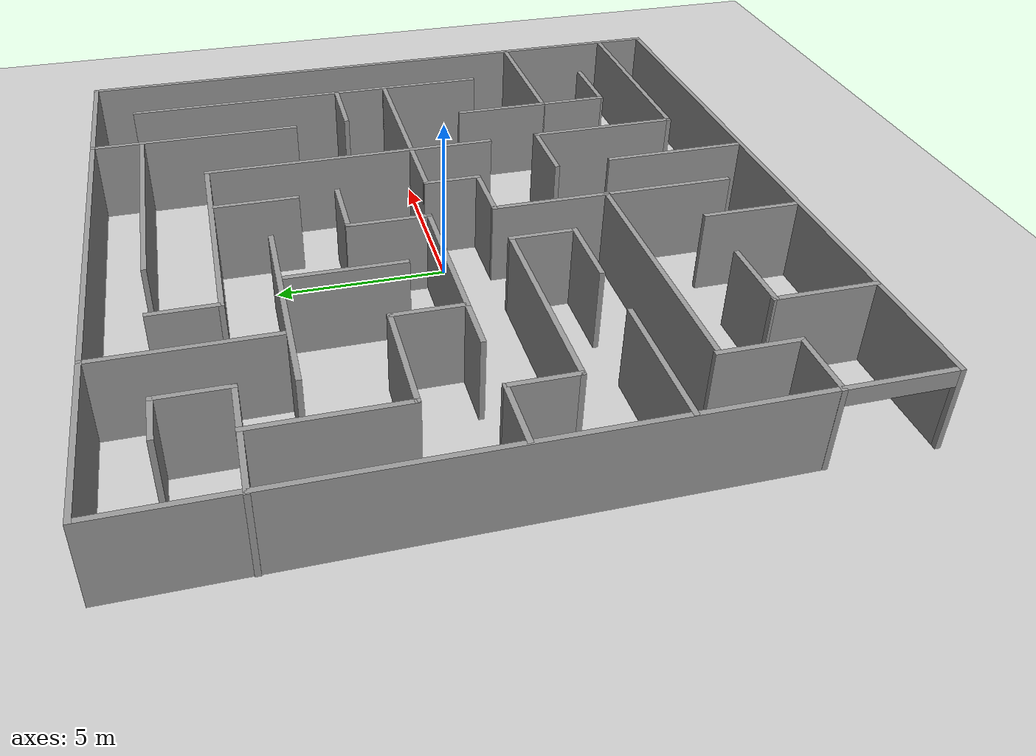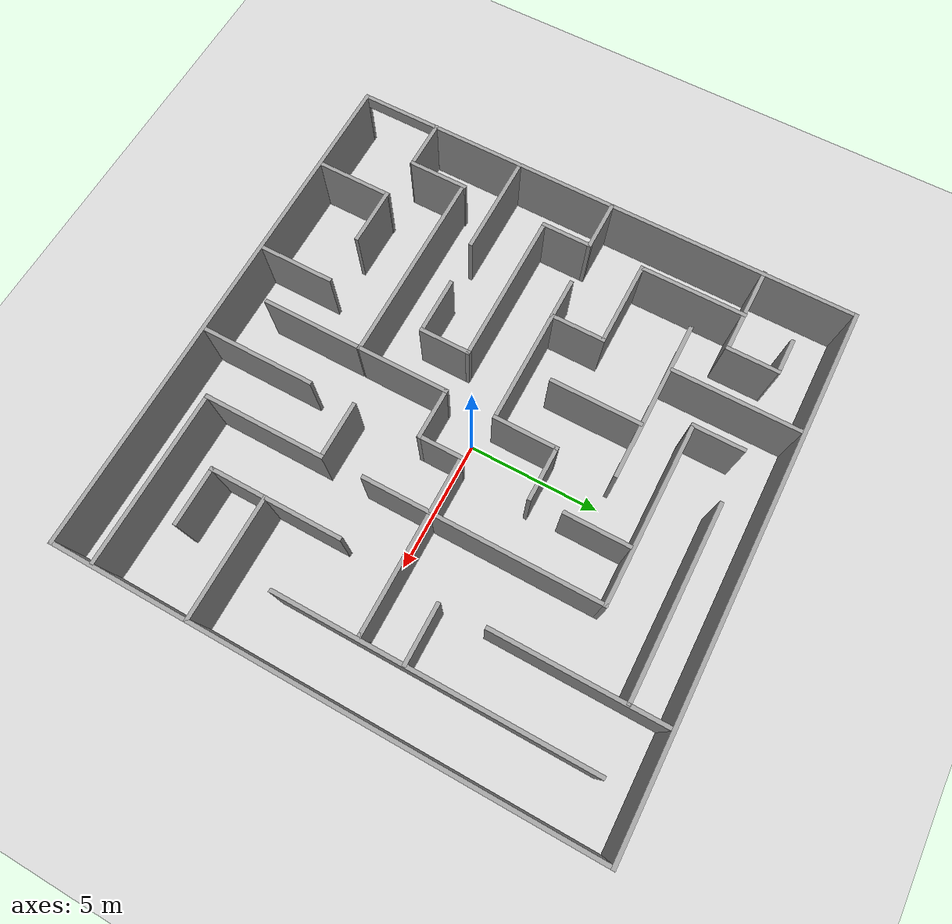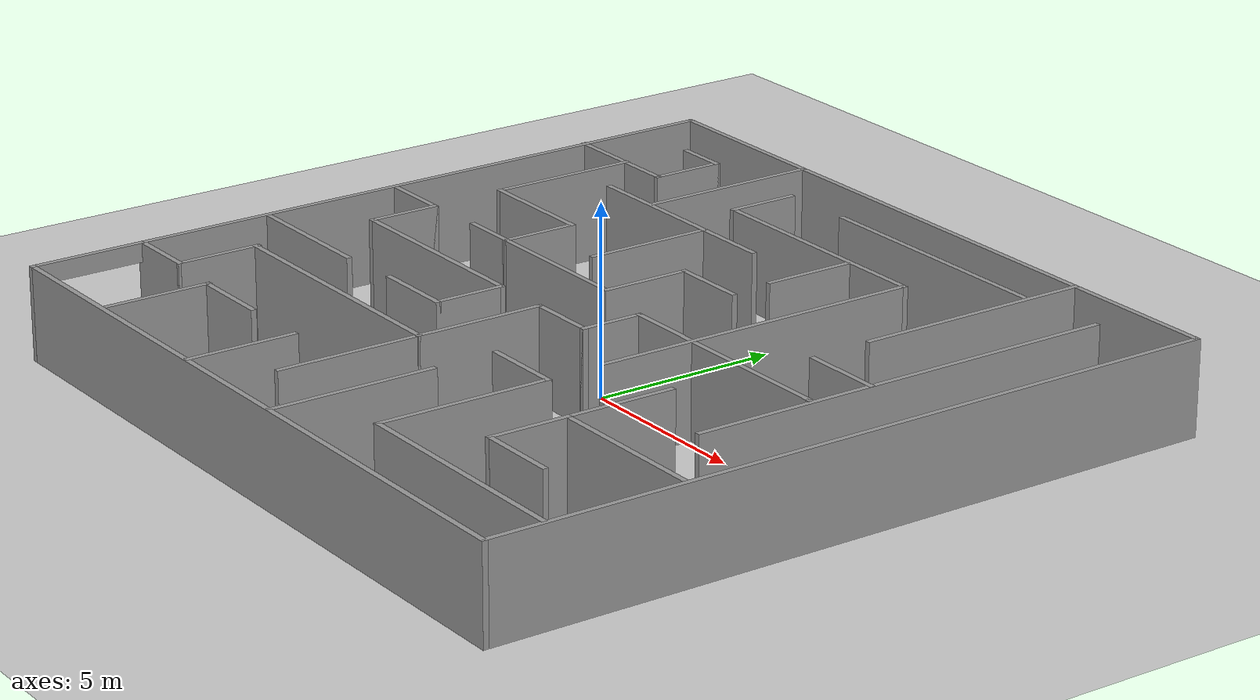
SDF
<sdf version="1.7">
 <world name="default">
  <light name="sun" type="directional">
   <pose>0 0 10 0 -0 0</pose>
   <diffuse>0.8 0.8 0.8 1</diffuse>
   <specular>0.2 0.2 0.2 1</specular>
   <attenuation>
    <range>1000</range>
    <constant>0.9</constant>
    <linear>0.01</linear>
    <quadratic>0.001</quadratic>
   </attenuation>
   <direction>-0.5 0.1 -0.9</direction>
   <spot><inner_angle>0</inner_angle><outer_angle>0</outer_angle><falloff>0</falloff></spot>
  </light>
  <model name="ground_plane">
   <static>1</static>
   <link name="link">
    <collision name="collision">
     <geometry><plane><normal>0 0 1</normal><size>100 100</size></plane></geometry>
     <surface>
      <contact><collide_bitmask>65535</collide_bitmask></contact>
      <friction><ode><mu>100</mu><mu2>50</mu2></ode></friction>
     </surface>
    </collision>
    <visual name="visual">
     <cast_shadows>0</cast_shadows>
     <geometry><plane><normal>0 0 1</normal><size>100 100</size></plane></geometry>
     <material>
      <script><uri>file://media/materials/scripts/gazebo.material</uri><name>Gazebo/Grey</name></script>
     </material>
    </visual>
   </link>
  </model>
  <gravity>0 0 -9.8</gravity>
  <magnetic_field>6e-06 2.3e-05 -4.2e-05</magnetic_field>
  <atmosphere type="adiabatic"/>
  <physics type="ode">
   <max_step_size>0.001</max_step_size>
   <real_time_factor>1</real_time_factor>
   <real_time_update_rate>1000</real_time_update_rate>
  </physics>
  <scene><ambient>0.4 0.4 0.4 1</ambient><background>0.7 0.7 0.7 1</background><shadows>1</shadows></scene>
  <spherical_coordinates>
   <surface_model>EARTH_WGS84</surface_model>
   <latitude_deg>0</latitude_deg>
   <longitude_deg>0</longitude_deg>
   <elevation>0</elevation>
   <heading_deg>0</heading_deg>
  </spherical_coordinates>
  <model name="custom_maze">
   <pose>-0.01457 0 0 0 -0 0</pose>
   <link name="Wall_0">
    <collision name="Wall_0_Collision">
     <geometry><box><size>20.15 0.15 2.5</size></box></geometry>
     <pose>0 0 1.25 0 -0 0</pose>
    </collision>
    <visual name="Wall_0_Visual">
     <pose>0 0 1.25 0 -0 0</pose>
     <geometry><box><size>20.15 0.15 2.5</size></box></geometry>
     <material>
      <script><uri>file://media/materials/scripts/gazebo.material</uri><name>Gazebo/Grey</name></script>
      <ambient>1 1 1 1</ambient>
     </material>
     <meta><layer>0</layer></meta>
    </visual>
    <pose>0.01457 10 0 0 -0 0</pose>
   </link>
   <link name="Wall_10">
    <collision name="Wall_10_Collision">
     <geometry><box><size>3 0.15 2.5</size></box></geometry>
     <pose>0 0 1.25 0 -0 0</pose>
    </collision>
    <visual name="Wall_10_Visual">
     <pose>0 0 1.25 0 -0 0</pose>
     <geometry><box><size>3 0.15 2.5</size></box></geometry>
     <material>
      <script><uri>file://media/materials/scripts/gazebo.material</uri><name>Gazebo/Grey</name></script>
      <ambient>1 1 1 1</ambient>
     </material>
     <meta><layer>0</layer></meta>
    </visual>
    <pose>-2.40022 -8.53063 0 0 -0 1.5708</pose>
   </link>
   <link name="Wall_12">
    <collision name="Wall_12_Collision">
     <geometry><box><size>2.28767 0.15 2.5</size></box></geometry>
     <pose>0 0 1.25 0 -0 0</pose>
    </collision>
    <visual name="Wall_12_Visual">
     <pose>0 0 1.25 0 -0 0</pose>
     <geometry><box><size>2.28767 0.15 2.5</size></box></geometry>
     <material>
      <script><uri>file://media/materials/scripts/gazebo.material</uri><name>Gazebo/Grey</name></script>
      <ambient>1 1 1 1</ambient>
     </material>
     <meta><layer>0</layer></meta>
    </visual>
    <pose>-5.4196 -7.09916 0 0 -0 0.000154</pose>
   </link>
   <link name="Wall_14">
    <collision name="Wall_14_Collision">
     <geometry><box><size>4.5 0.15 2.5</size></box></geometry>
     <pose>0 0 1.25 0 -0 0</pose>
    </collision>
    <visual name="Wall_14_Visual">
     <pose>0 0 1.25 0 -0 0</pose>
     <geometry><box><size>4.5 0.15 2.5</size></box></geometry>
     <material>
      <script><uri>file://media/materials/scripts/gazebo.material</uri><name>Gazebo/Grey</name></script>
      <ambient>1 1 1 1</ambient>
     </material>
     <meta><layer>0</layer></meta>
    </visual>
    <pose>1.32288 -7.80496 0 0 -0 1.5708</pose>
   </link>
   <link name="Wall_16">
    <collision name="Wall_16_Collision">
     <geometry><box><size>2.25 0.15 2.5</size></box></geometry>
     <pose>0 0 1.25 0 -0 0</pose>
    </collision>
    <visual name="Wall_16_Visual">
     <pose>0 0 1.25 0 -0 0</pose>
     <geometry><box><size>2.25 0.15 2.5</size></box></geometry>
     <material>
      <script><uri>file://media/materials/scripts/gazebo.material</uri><name>Gazebo/Grey</name></script>
      <ambient>1 1 1 1</ambient>
     </material>
     <meta><layer>0</layer></meta>
    </visual>
    <pose>2.36657 -3.872 0 0 -0 0</pose>
   </link>
   <link name="Wall_18">
    <collision name="Wall_18_Collision">
     <geometry><box><size>4.70575 0.15 2.5</size></box></geometry>
     <pose>0 0 1.25 0 -0 0</pose>
    </collision>
    <visual name="Wall_18_Visual">
     <pose>0 0 1.25 0 -0 0</pose>
     <geometry><box><size>4.70575 0.15 2.5</size></box></geometry>
     <material>
      <script><uri>file://media/materials/scripts/gazebo.material</uri><name>Gazebo/Grey</name></script>
      <ambient>1 1 1 1</ambient>
     </material>
     <meta><layer>0</layer></meta>
    </visual>
    <pose>3.41657 -6.15 0 0 -0 -1.5708</pose>
   </link>
   <link name="Wall_19">
    <collision name="Wall_19_Collision">
     <geometry><box><size>6.64165 0.15 2.5</size></box></geometry>
     <pose>0 0 1.25 0 -0 0</pose>
    </collision>
    <visual name="Wall_19_Visual">
     <pose>0 0 1.25 0 -0 0</pose>
     <geometry><box><size>6.64165 0.15 2.5</size></box></geometry>
     <material>
      <script><uri>file://media/materials/scripts/gazebo.material</uri><name>Gazebo/Grey</name></script>
      <ambient>1 1 1 1</ambient>
     </material>
     <meta><layer>0</layer></meta>
    </visual>
    <pose>6.66207 -8.428 0 0 -0 0</pose>
   </link>
   <link name="Wall_2">
    <collision name="Wall_2_Collision">
     <geometry><box><size>20.15 0.15 2.5</size></box></geometry>
     <pose>0 0 1.25 0 -0 0</pose>
    </collision>
    <visual name="Wall_2_Visual">
     <pose>0 0 1.25 0 -0 0</pose>
     <geometry><box><size>20.15 0.15 2.5</size></box></geometry>
     <material>
      <script><uri>file://media/materials/scripts/gazebo.material</uri><name>Gazebo/Grey</name></script>
      <ambient>1 1 1 1</ambient>
     </material>
     <meta><layer>0</layer></meta>
    </visual>
    <pose>10.0146 0 0 0 -0 -1.5708</pose>
   </link>
   <link name="Wall_21">
    <collision name="Wall_21_Collision">
     <geometry><box><size>11.75 0.15 2.5</size></box></geometry>
     <pose>0 0 1.25 0 -0 0</pose>
    </collision>
    <visual name="Wall_21_Visual">
     <pose>0 0 1.25 0 -0 0</pose>
     <geometry><box><size>11.75 0.15 2.5</size></box></geometry>
     <material>
      <script><uri>file://media/materials/scripts/gazebo.material</uri><name>Gazebo/Grey</name></script>
      <ambient>1 1 1 1</ambient>
     </material>
     <meta><layer>0</layer></meta>
    </visual>
    <pose>7.96606 2.88422 0 0 -0 -1.5708</pose>
   </link>
   <link name="Wall_23">
    <collision name="Wall_23_Collision">
     <geometry><box><size>4.63921 0.15 2.5</size></box></geometry>
     <pose>0 0 1.25 0 -0 0</pose>
    </collision>
    <visual name="Wall_23_Visual">
     <pose>0 0 1.25 0 -0 0</pose>
     <geometry><box><size>4.63921 0.15 2.5</size></box></geometry>
     <material>
      <script><uri>file://media/materials/scripts/gazebo.material</uri><name>Gazebo/Grey</name></script>
      <ambient>1 1 1 1</ambient>
     </material>
     <meta><layer>0</layer></meta>
    </visual>
    <pose>7.74118 -4.74808 0 0 -0 3.14156</pose>
   </link>
   <link name="Wall_24">
    <collision name="Wall_24_Collision">
     <geometry><box><size>3 0.15 2.5</size></box></geometry>
     <pose>0 0 1.25 0 -0 0</pose>
    </collision>
    <visual name="Wall_24_Visual">
     <pose>0 0 1.25 0 -0 0</pose>
     <geometry><box><size>3 0.15 2.5</size></box></geometry>
     <material>
      <script><uri>file://media/materials/scripts/gazebo.material</uri><name>Gazebo/Grey</name></script>
      <ambient>1 1 1 1</ambient>
     </material>
     <meta><layer>0</layer></meta>
    </visual>
    <pose>5.49657 -3.323 0 0 -0 1.5708</pose>
   </link>
   <link name="Wall_26">
    <collision name="Wall_26_Collision">
     <geometry><box><size>2.23233 0.15 2.5</size></box></geometry>
     <pose>0 0 1.25 0 -0 0</pose>
    </collision>
    <visual name="Wall_26_Visual">
     <pose>0 0 1.25 0 -0 0</pose>
     <geometry><box><size>2.23233 0.15 2.5</size></box></geometry>
     <material>
      <script><uri>file://media/materials/scripts/gazebo.material</uri><name>Gazebo/Grey</name></script>
      <ambient>1 1 1 1</ambient>
     </material>
     <meta><layer>0</layer></meta>
    </visual>
    <pose>5.49657 -5.789 0 0 -0 -1.5708</pose>
   </link>
   <link name="Wall_27">
    <collision name="Wall_27_Collision">
     <geometry><box><size>2.24987 0.15 2.5</size></box></geometry>
     <pose>0 0 1.25 0 -0 0</pose>
    </collision>
    <visual name="Wall_27_Visual">
     <pose>0 0 1.25 0 -0 0</pose>
     <geometry><box><size>2.24987 0.15 2.5</size></box></geometry>
     <material>
      <script><uri>file://media/materials/scripts/gazebo.material</uri><name>Gazebo/Grey</name></script>
      <ambient>1 1 1 1</ambient>
     </material>
     <meta><layer>0</layer></meta>
    </visual>
    <pose>6.5465 -6.83024 0 0 -0 -0.000228</pose>
   </link>
   <link name="Wall_29">
    <collision name="Wall_29_Collision">
     <geometry><box><size>6.5 0.15 2.5</size></box></geometry>
     <pose>0 0 1.25 0 -0 0</pose>
    </collision>
    <visual name="Wall_29_Visual">
     <pose>0 0 1.25 0 -0 0</pose>
     <geometry><box><size>6.5 0.15 2.5</size></box></geometry>
     <material>
      <script><uri>file://media/materials/scripts/gazebo.material</uri><name>Gazebo/Grey</name></script>
      <ambient>1 1 1 1</ambient>
     </material>
     <meta><layer>0</layer></meta>
    </visual>
    <pose>5.75167 6.82325 0 0 -0 -1.5708</pose>
   </link>
   <link name="Wall_3">
    <collision name="Wall_3_Collision">
     <geometry><box><size>20.15 0.15 2.5</size></box></geometry>
     <pose>0 0 1.25 0 -0 0</pose>
    </collision>
    <visual name="Wall_3_Visual">
     <pose>0 0 1.25 0 -0 0</pose>
     <geometry><box><size>20.15 0.15 2.5</size></box></geometry>
     <material>
      <script><uri>file://media/materials/scripts/gazebo.material</uri><name>Gazebo/Grey</name></script>
      <ambient>1 1 1 1</ambient>
     </material>
     <meta><layer>0</layer></meta>
    </visual>
    <pose>0.01457 -10 0 0 -0 3.14159</pose>
   </link>
   <link name="Wall_31">
    <collision name="Wall_31_Collision">
     <geometry><box><size>2.25 0.15 2.5</size></box></geometry>
     <pose>0 0 1.25 0 -0 0</pose>
    </collision>
    <visual name="Wall_31_Visual">
     <pose>0 0 1.25 0 -0 0</pose>
     <geometry><box><size>2.25 0.15 2.5</size></box></geometry>
     <material>
      <script><uri>file://media/materials/scripts/gazebo.material</uri><name>Gazebo/Grey</name></script>
      <ambient>1 1 1 1</ambient>
     </material>
     <meta><layer>0</layer></meta>
    </visual>
    <pose>6.89173 1.91936 0 0 -0 3.14159</pose>
   </link>
   <link name="Wall_33">
    <collision name="Wall_33_Collision">
     <geometry><box><size>7.25 0.15 2.5</size></box></geometry>
     <pose>0 0 1.25 0 -0 0</pose>
    </collision>
    <visual name="Wall_33_Visual">
     <pose>0 0 1.25 0 -0 0</pose>
     <geometry><box><size>7.25 0.15 2.5</size></box></geometry>
     <material>
      <script><uri>file://media/materials/scripts/gazebo.material</uri><name>Gazebo/Grey</name></script>
      <ambient>1 1 1 1</ambient>
     </material>
     <meta><layer>0</layer></meta>
    </visual>
    <pose>2.153 8.48954 0 0 -0 3.14159</pose>
   </link>
   <link name="Wall_35">
    <collision name="Wall_35_Collision">
     <geometry><box><size>2 0.15 2.5</size></box></geometry>
     <pose>0 0 1.25 0 -0 0</pose>
    </collision>
    <visual name="Wall_35_Visual">
     <pose>0 0 1.25 0 -0 0</pose>
     <geometry><box><size>2 0.15 2.5</size></box></geometry>
     <material>
      <script><uri>file://media/materials/scripts/gazebo.material</uri><name>Gazebo/Grey</name></script>
      <ambient>1 1 1 1</ambient>
     </material>
     <meta><layer>0</layer></meta>
    </visual>
    <pose>-9.06743 -6.93811 0 0 -0 0.000115</pose>
   </link>
   <link name="Wall_36">
    <collision name="Wall_36_Collision">
     <geometry><box><size>2.36935 0.15 2.5</size></box></geometry>
     <pose>0 0 1.25 0 -0 0</pose>
    </collision>
    <visual name="Wall_36_Visual">
     <pose>0 0 1.25 0 -0 0</pose>
     <geometry><box><size>2.36935 0.15 2.5</size></box></geometry>
     <material>
      <script><uri>file://media/materials/scripts/gazebo.material</uri><name>Gazebo/Grey</name></script>
      <ambient>1 1 1 1</ambient>
     </material>
     <meta><layer>0</layer></meta>
    </visual>
    <pose>-8.14243 -5.82833 0 0 -0 1.5708</pose>
   </link>
   <link name="Wall_37">
    <collision name="Wall_37_Collision">
     <geometry><box><size>7.677 0.15 2.5</size></box></geometry>
     <pose>0 0 1.25 0 -0 0</pose>
    </collision>
    <visual name="Wall_37_Visual">
     <pose>0 0 1.25 0 -0 0</pose>
     <geometry><box><size>7.677 0.15 2.5</size></box></geometry>
     <material>
      <script><uri>file://media/materials/scripts/gazebo.material</uri><name>Gazebo/Grey</name></script>
      <ambient>1 1 1 1</ambient>
     </material>
     <meta><layer>0</layer></meta>
    </visual>
    <pose>-4.37893 -4.76732 0 0 -0 0</pose>
   </link>
   <link name="Wall_38">
    <collision name="Wall_38_Collision">
     <geometry><box><size>3.8 0.15 2.5</size></box></geometry>
     <pose>0 0 1.25 0 -0 0</pose>
    </collision>
    <visual name="Wall_38_Visual">
     <pose>0 0 1.25 0 -0 0</pose>
     <geometry><box><size>3.8 0.15 2.5</size></box></geometry>
     <material>
      <script><uri>file://media/materials/scripts/gazebo.material</uri><name>Gazebo/Grey</name></script>
      <ambient>1 1 1 1</ambient>
     </material>
     <meta><layer>0</layer></meta>
    </visual>
    <pose>-0.61543 -6.75883 0 0 -0 -1.5708</pose>
   </link>
   <link name="Wall_4">
    <pose>-9.98543 0 0 0 -0 1.5708</pose>
    <visual name="Wall_4_Visual_0">
     <pose>-9.99893 0 1.25 0 -0 0</pose>
     <geometry><box><size>0.152694 0.15 2.5</size></box></geometry>
     <material>
      <script><uri>file://media/materials/scripts/gazebo.material</uri><name>Gazebo/Grey</name></script>
      <ambient>1 1 1 1</ambient>
     </material>
     <meta><layer>0</layer></meta>
    </visual>
    <collision name="Wall_4_Collision_0">
     <geometry><box><size>0.152694 0.15 2.5</size></box></geometry>
     <pose>-9.99893 0 1.25 0 -0 0</pose>
    </collision>
    <visual name="Wall_4_Visual_1">
     <pose>1.57635 0 1.25 0 -0 0</pose>
     <geometry><box><size>16.9979 0.15 2.5</size></box></geometry>
     <material>
      <script><uri>file://media/materials/scripts/gazebo.material</uri><name>Gazebo/Grey</name></script>
      <ambient>1 1 1 1</ambient>
     </material>
     <meta><layer>0</layer></meta>
    </visual>
    <collision name="Wall_4_Collision_1">
     <geometry><box><size>16.9979 0.15 2.5</size></box></geometry>
     <pose>1.57635 0 1.25 0 -0 0</pose>
    </collision>
    <visual name="Wall_4_Visual_2">
     <pose>-8.42259 0 2.25 0 -0 0</pose>
     <geometry><box><size>3 0.15 0.5</size></box></geometry>
     <material>
      <script><uri>file://media/materials/scripts/gazebo.material</uri><name>Gazebo/Grey</name></script>
      <ambient>1 1 1 1</ambient>
     </material>
     <meta><layer>0</layer></meta>
    </visual>
    <collision name="Wall_4_Collision_2">
     <geometry><box><size>3 0.15 0.5</size></box></geometry>
     <pose>-8.42259 0 2.25 0 -0 0</pose>
    </collision>
   </link>
   <link name="Wall_40">
    <collision name="Wall_40_Collision">
     <geometry><box><size>1.44062 0.15 2.5</size></box></geometry>
     <pose>0 0 1.25 0 -0 0</pose>
    </collision>
    <visual name="Wall_40_Visual">
     <pose>0 0 1.25 0 -0 0</pose>
     <geometry><box><size>1.44062 0.15 2.5</size></box></geometry>
     <material>
      <script><uri>file://media/materials/scripts/gazebo.material</uri><name>Gazebo/Grey</name></script>
      <ambient>1 1 1 1</ambient>
     </material>
     <meta><layer>0</layer></meta>
    </visual>
    <pose>-7.32074 8.3921 0 0 -0 -0.00016</pose>
   </link>
   <link name="Wall_41">
    <collision name="Wall_41_Collision">
     <geometry><box><size>2.03551 0.15 2.5</size></box></geometry>
     <pose>0 0 1.25 0 -0 0</pose>
    </collision>
    <visual name="Wall_41_Visual">
     <pose>0 0 1.25 0 -0 0</pose>
     <geometry><box><size>2.03551 0.15 2.5</size></box></geometry>
     <material>
      <script><uri>file://media/materials/scripts/gazebo.material</uri><name>Gazebo/Grey</name></script>
      <ambient>1 1 1 1</ambient>
     </material>
     <meta><layer>0</layer></meta>
    </visual>
    <pose>-6.67543 7.4495 0 0 -0 -1.5708</pose>
   </link>
   <link name="Wall_42">
    <collision name="Wall_42_Collision">
     <geometry><box><size>3.48899 0.15 2.5</size></box></geometry>
     <pose>0 0 1.25 0 -0 0</pose>
    </collision>
    <visual name="Wall_42_Visual">
     <pose>0 0 1.25 0 -0 0</pose>
     <geometry><box><size>3.48899 0.15 2.5</size></box></geometry>
     <material>
      <script><uri>file://media/materials/scripts/gazebo.material</uri><name>Gazebo/Grey</name></script>
      <ambient>1 1 1 1</ambient>
     </material>
     <meta><layer>0</layer></meta>
    </visual>
    <pose>-8.34507 6.50693 0 0 -0 -3.14155</pose>
   </link>
   <link name="Wall_44">
    <collision name="Wall_44_Collision">
     <geometry><box><size>3.51979 0.15 2.5</size></box></geometry>
     <pose>0 0 1.25 0 -0 0</pose>
    </collision>
    <visual name="Wall_44_Visual">
     <pose>0 0 1.25 0 -0 0</pose>
     <geometry><box><size>3.51979 0.15 2.5</size></box></geometry>
     <material>
      <script><uri>file://media/materials/scripts/gazebo.material</uri><name>Gazebo/Grey</name></script>
      <ambient>1 1 1 1</ambient>
     </material>
     <meta><layer>0</layer></meta>
    </visual>
    <pose>-0.615433 -3.03376 0 0 -0 1.5708</pose>
   </link>
   <link name="Wall_45">
    <collision name="Wall_45_Collision">
     <geometry><box><size>2 0.15 2.5</size></box></geometry>
     <pose>0 0 1.25 0 -0 0</pose>
    </collision>
    <visual name="Wall_45_Visual">
     <pose>0 0 1.25 0 -0 0</pose>
     <geometry><box><size>2 0.15 2.5</size></box></geometry>
     <material>
      <script><uri>file://media/materials/scripts/gazebo.material</uri><name>Gazebo/Grey</name></script>
      <ambient>1 1 1 1</ambient>
     </material>
     <meta><layer>0</layer></meta>
    </visual>
    <pose>0.309565 -1.34887 0 0 -0 0</pose>
   </link>
   <link name="Wall_46">
    <collision name="Wall_46_Collision">
     <geometry><box><size>1.75 0.15 2.5</size></box></geometry>
     <pose>0 0 1.25 0 -0 0</pose>
    </collision>
    <visual name="Wall_46_Visual">
     <pose>0 0 1.25 0 -0 0</pose>
     <geometry><box><size>1.75 0.15 2.5</size></box></geometry>
     <material>
      <script><uri>file://media/materials/scripts/gazebo.material</uri><name>Gazebo/Grey</name></script>
      <ambient>1 1 1 1</ambient>
     </material>
     <meta><layer>0</layer></meta>
    </visual>
    <pose>1.23456 -0.548869 0 0 -0 1.5708</pose>
   </link>
   <link name="Wall_47">
    <collision name="Wall_47_Collision">
     <geometry><box><size>6.75 0.15 2.5</size></box></geometry>
     <pose>0 0 1.25 0 -0 0</pose>
    </collision>
    <visual name="Wall_47_Visual">
     <pose>0 0 1.25 0 -0 0</pose>
     <geometry><box><size>6.75 0.15 2.5</size></box></geometry>
     <material>
      <script><uri>file://media/materials/scripts/gazebo.material</uri><name>Gazebo/Grey</name></script>
      <ambient>1 1 1 1</ambient>
     </material>
     <meta><layer>0</layer></meta>
    </visual>
    <pose>4.53456 0.251131 0 0 -0 0</pose>
   </link>
   <link name="Wall_48">
    <collision name="Wall_48_Collision">
     <geometry><box><size>0.15 0.15 2.5</size></box></geometry>
     <pose>0 0 1.25 0 -0 0</pose>
    </collision>
    <visual name="Wall_48_Visual">
     <pose>0 0 1.25 0 -0 0</pose>
     <geometry><box><size>0.15 0.15 2.5</size></box></geometry>
     <material>
      <script><uri>file://media/materials/scripts/gazebo.material</uri><name>Gazebo/Grey</name></script>
      <ambient>1 1 1 1</ambient>
     </material>
     <meta><layer>0</layer></meta>
    </visual>
    <pose>7.83456 0.251131 0 0 -0 0</pose>
   </link>
   <link name="Wall_50">
    <collision name="Wall_50_Collision">
     <geometry><box><size>9.00669 0.15 2.5</size></box></geometry>
     <pose>0 0 1.25 0 -0 0</pose>
    </collision>
    <visual name="Wall_50_Visual">
     <pose>0 0 1.25 0 -0 0</pose>
     <geometry><box><size>9.00669 0.15 2.5</size></box></geometry>
     <material>
      <script><uri>file://media/materials/scripts/gazebo.material</uri><name>Gazebo/Grey</name></script>
      <ambient>1 1 1 1</ambient>
     </material>
     <meta><layer>0</layer></meta>
    </visual>
    <pose>3.36657 2.1625 0 0 -0 1.5708</pose>
   </link>
   <link name="Wall_51">
    <collision name="Wall_51_Collision">
     <geometry><box><size>6.99336 0.15 2.5</size></box></geometry>
     <pose>0 0 1.25 0 -0 0</pose>
    </collision>
    <visual name="Wall_51_Visual">
     <pose>0 0 1.25 0 -0 0</pose>
     <geometry><box><size>6.99336 0.15 2.5</size></box></geometry>
     <material>
      <script><uri>file://media/materials/scripts/gazebo.material</uri><name>Gazebo/Grey</name></script>
      <ambient>1 1 1 1</ambient>
     </material>
     <meta><layer>0</layer></meta>
    </visual>
    <pose>-0.05493 6.591 0 0 -0 3.14159</pose>
   </link>
   <link name="Wall_52">
    <collision name="Wall_52_Collision">
     <geometry><box><size>1.99334 0.15 2.5</size></box></geometry>
     <pose>0 0 1.25 0 -0 0</pose>
    </collision>
    <visual name="Wall_52_Visual">
     <pose>0 0 1.25 0 -0 0</pose>
     <geometry><box><size>1.99334 0.15 2.5</size></box></geometry>
     <material>
      <script><uri>file://media/materials/scripts/gazebo.material</uri><name>Gazebo/Grey</name></script>
      <ambient>1 1 1 1</ambient>
     </material>
     <meta><layer>0</layer></meta>
    </visual>
    <pose>-3.47643 7.5125 0 0 -0 1.5708</pose>
   </link>
   <link name="Wall_55">
    <collision name="Wall_55_Collision">
     <geometry><box><size>2.5 0.15 2.5</size></box></geometry>
     <pose>0 0 1.25 0 -0 0</pose>
    </collision>
    <visual name="Wall_55_Visual">
     <pose>0 0 1.25 0 -0 0</pose>
     <geometry><box><size>2.5 0.15 2.5</size></box></geometry>
     <material>
      <script><uri>file://media/materials/scripts/gazebo.material</uri><name>Gazebo/Grey</name></script>
      <ambient>1 1 1 1</ambient>
     </material>
     <meta><layer>0</layer></meta>
    </visual>
    <pose>1.29854 5.29482 0 0 -0 -1.5708</pose>
   </link>
   <link name="Wall_57">
    <collision name="Wall_57_Collision">
     <geometry><box><size>4 0.15 2.5</size></box></geometry>
     <pose>0 0 1.25 0 -0 0</pose>
    </collision>
    <visual name="Wall_57_Visual">
     <pose>0 0 1.25 0 -0 0</pose>
     <geometry><box><size>4 0.15 2.5</size></box></geometry>
     <material>
      <script><uri>file://media/materials/scripts/gazebo.material</uri><name>Gazebo/Grey</name></script>
      <ambient>1 1 1 1</ambient>
     </material>
     <meta><layer>0</layer></meta>
    </visual>
    <pose>-8.0431 -3.33678 0 0 -0 0</pose>
   </link>
   <link name="Wall_59">
    <collision name="Wall_59_Collision">
     <geometry><box><size>2.25 0.15 2.5</size></box></geometry>
     <pose>0 0 1.25 0 -0 0</pose>
    </collision>
    <visual name="Wall_59_Visual">
     <pose>0 0 1.25 0 -0 0</pose>
     <geometry><box><size>2.25 0.15 2.5</size></box></geometry>
     <material>
      <script><uri>file://media/materials/scripts/gazebo.material</uri><name>Gazebo/Grey</name></script>
      <ambient>1 1 1 1</ambient>
     </material>
     <meta><layer>0</layer></meta>
    </visual>
    <pose>-3.29695 -3.21511 0 0 -0 0</pose>
   </link>
   <link name="Wall_60">
    <collision name="Wall_60_Collision">
     <geometry><box><size>2 0.15 2.5</size></box></geometry>
     <pose>0 0 1.25 0 -0 0</pose>
    </collision>
    <visual name="Wall_60_Visual">
     <pose>0 0 1.25 0 -0 0</pose>
     <geometry><box><size>2 0.15 2.5</size></box></geometry>
     <material>
      <script><uri>file://media/materials/scripts/gazebo.material</uri><name>Gazebo/Grey</name></script>
      <ambient>1 1 1 1</ambient>
     </material>
     <meta><layer>0</layer></meta>
    </visual>
    <pose>-2.24695 -2.29011 0 0 -0 1.5708</pose>
   </link>
   <link name="Wall_61">
    <collision name="Wall_61_Collision">
     <geometry><box><size>6 0.15 2.5</size></box></geometry>
     <pose>0 0 1.25 0 -0 0</pose>
    </collision>
    <visual name="Wall_61_Visual">
     <pose>0 0 1.25 0 -0 0</pose>
     <geometry><box><size>6 0.15 2.5</size></box></geometry>
     <material>
      <script><uri>file://media/materials/scripts/gazebo.material</uri><name>Gazebo/Grey</name></script>
      <ambient>1 1 1 1</ambient>
     </material>
     <meta><layer>0</layer></meta>
    </visual>
    <pose>-5.17195 -1.36511 0 0 -0 3.14159</pose>
   </link>
   <link name="Wall_62">
    <collision name="Wall_62_Collision">
     <geometry><box><size>2 0.15 2.5</size></box></geometry>
     <pose>0 0 1.25 0 -0 0</pose>
    </collision>
    <visual name="Wall_62_Visual">
     <pose>0 0 1.25 0 -0 0</pose>
     <geometry><box><size>2 0.15 2.5</size></box></geometry>
     <material>
      <script><uri>file://media/materials/scripts/gazebo.material</uri><name>Gazebo/Grey</name></script>
      <ambient>1 1 1 1</ambient>
     </material>
     <meta><layer>0</layer></meta>
    </visual>
    <pose>-8.09695 -0.440111 0 0 -0 1.5708</pose>
   </link>
   <link name="Wall_63">
    <collision name="Wall_63_Collision">
     <geometry><box><size>2 0.15 2.5</size></box></geometry>
     <pose>0 0 1.25 0 -0 0</pose>
    </collision>
    <visual name="Wall_63_Visual">
     <pose>0 0 1.25 0 -0 0</pose>
     <geometry><box><size>2 0.15 2.5</size></box></geometry>
     <material>
      <script><uri>file://media/materials/scripts/gazebo.material</uri><name>Gazebo/Grey</name></script>
      <ambient>1 1 1 1</ambient>
     </material>
     <meta><layer>0</layer></meta>
    </visual>
    <pose>-9.02195 0.484889 0 0 -0 3.14159</pose>
   </link>
   <link name="Wall_65">
    <collision name="Wall_65_Collision">
     <geometry><box><size>5 0.15 2.5</size></box></geometry>
     <pose>0 0 1.25 0 -0 0</pose>
    </collision>
    <visual name="Wall_65_Visual">
     <pose>0 0 1.25 0 -0 0</pose>
     <geometry><box><size>5 0.15 2.5</size></box></geometry>
     <material>
      <script><uri>file://media/materials/scripts/gazebo.material</uri><name>Gazebo/Grey</name></script>
      <ambient>1 1 1 1</ambient>
     </material>
     <meta><layer>0</layer></meta>
    </visual>
    <pose>-5.00396 7.57325 0 0 -0 -1.5708</pose>
   </link>
   <link name="Wall_67">
    <collision name="Wall_67_Collision">
     <geometry><box><size>4.11739 0.15 2.5</size></box></geometry>
     <pose>0 0 1.25 0 -0 0</pose>
    </collision>
    <visual name="Wall_67_Visual">
     <pose>0 0 1.25 0 -0 0</pose>
     <geometry><box><size>4.11739 0.15 2.5</size></box></geometry>
     <material>
      <script><uri>file://media/materials/scripts/gazebo.material</uri><name>Gazebo/Grey</name></script>
      <ambient>1 1 1 1</ambient>
     </material>
     <meta><layer>0</layer></meta>
    </visual>
    <pose>-8.14343 4.5345 0 0 -0 -1.5708</pose>
   </link>
   <link name="Wall_68">
    <collision name="Wall_68_Collision">
     <geometry><box><size>3.38934 0.15 2.5</size></box></geometry>
     <pose>0 0 1.25 0 -0 0</pose>
    </collision>
    <visual name="Wall_68_Visual">
     <pose>0 0 1.25 0 -0 0</pose>
     <geometry><box><size>3.38934 0.15 2.5</size></box></geometry>
     <material>
      <script><uri>file://media/materials/scripts/gazebo.material</uri><name>Gazebo/Grey</name></script>
      <ambient>1 1 1 1</ambient>
     </material>
     <meta><layer>0</layer></meta>
    </visual>
    <pose>-6.52343 2.551 0 0 -0 0</pose>
   </link>
   <link name="Wall_69">
    <collision name="Wall_69_Collision">
     <geometry><box><size>2.13268 0.15 2.5</size></box></geometry>
     <pose>0 0 1.25 0 -0 0</pose>
    </collision>
    <visual name="Wall_69_Visual">
     <pose>0 0 1.25 0 -0 0</pose>
     <geometry><box><size>2.13268 0.15 2.5</size></box></geometry>
     <material>
      <script><uri>file://media/materials/scripts/gazebo.material</uri><name>Gazebo/Grey</name></script>
      <ambient>1 1 1 1</ambient>
     </material>
     <meta><layer>0</layer></meta>
    </visual>
    <pose>-4.90343 1.5595 0 0 -0 -1.5708</pose>
   </link>
   <link name="Wall_7">
    <collision name="Wall_7_Collision">
     <geometry><box><size>3.05501 0.15 2.5</size></box></geometry>
     <pose>0 0 1.25 0 -0 0</pose>
    </collision>
    <visual name="Wall_7_Visual">
     <pose>0 0 1.25 0 -0 0</pose>
     <geometry><box><size>3.05501 0.15 2.5</size></box></geometry>
     <material>
      <script><uri>file://media/materials/scripts/gazebo.material</uri><name>Gazebo/Grey</name></script>
      <ambient>1 1 1 1</ambient>
     </material>
     <meta><layer>0</layer></meta>
    </visual>
    <pose>-6.48843 -8.5275 0 0 -0 1.5708</pose>
   </link>
   <link name="Wall_70">
    <collision name="Wall_70_Collision">
     <geometry><box><size>1.63934 0.15 2.5</size></box></geometry>
     <pose>0 0 1.25 0 -0 0</pose>
    </collision>
    <visual name="Wall_70_Visual">
     <pose>0 0 1.25 0 -0 0</pose>
     <geometry><box><size>1.63934 0.15 2.5</size></box></geometry>
     <material>
      <script><uri>file://media/materials/scripts/gazebo.material</uri><name>Gazebo/Grey</name></script>
      <ambient>1 1 1 1</ambient>
     </material>
     <meta><layer>0</layer></meta>
    </visual>
    <pose>-5.64824 0.568244 0 0 -0 3.14126</pose>
   </link>
   <link name="Wall_73">
    <collision name="Wall_73_Collision">
     <geometry><box><size>6.25 0.15 2.5</size></box></geometry>
     <pose>0 0 1.25 0 -0 0</pose>
    </collision>
    <visual name="Wall_73_Visual">
     <pose>0 0 1.25 0 -0 0</pose>
     <geometry><box><size>6.25 0.15 2.5</size></box></geometry>
     <material>
      <script><uri>file://media/materials/scripts/gazebo.material</uri><name>Gazebo/Grey</name></script>
      <ambient>1 1 1 1</ambient>
     </material>
     <meta><layer>0</layer></meta>
    </visual>
    <pose>-3.70601 5.05845 0 0 -0 0</pose>
   </link>
   <link name="Wall_75">
    <collision name="Wall_75_Collision">
     <geometry><box><size>4.488 0.15 2.5</size></box></geometry>
     <pose>0 0 1.25 0 -0 0</pose>
    </collision>
    <visual name="Wall_75_Visual">
     <pose>0 0 1.25 0 -0 0</pose>
     <geometry><box><size>4.488 0.15 2.5</size></box></geometry>
     <material>
      <script><uri>file://media/materials/scripts/gazebo.material</uri><name>Gazebo/Grey</name></script>
      <ambient>1 1 1 1</ambient>
     </material>
     <meta><layer>0</layer></meta>
    </visual>
    <pose>-2.73443 0.568 0 0 -0 0</pose>
   </link>
   <link name="Wall_76">
    <collision name="Wall_76_Collision">
     <geometry><box><size>2.482 0.15 2.5</size></box></geometry>
     <pose>0 0 1.25 0 -0 0</pose>
    </collision>
    <visual name="Wall_76_Visual">
     <pose>0 0 1.25 0 -0 0</pose>
     <geometry><box><size>2.482 0.15 2.5</size></box></geometry>
     <material>
      <script><uri>file://media/materials/scripts/gazebo.material</uri><name>Gazebo/Grey</name></script>
      <ambient>1 1 1 1</ambient>
     </material>
     <meta><layer>0</layer></meta>
    </visual>
    <pose>-0.56543 1.734 0 0 -0 1.5708</pose>
   </link>
   <link name="Wall_77">
    <collision name="Wall_77_Collision">
     <geometry><box><size>2.122 0.15 2.5</size></box></geometry>
     <pose>0 0 1.25 0 -0 0</pose>
    </collision>
    <visual name="Wall_77_Visual">
     <pose>0 0 1.25 0 -0 0</pose>
     <geometry><box><size>2.122 0.15 2.5</size></box></geometry>
     <material>
      <script><uri>file://media/materials/scripts/gazebo.material</uri><name>Gazebo/Grey</name></script>
      <ambient>1 1 1 1</ambient>
     </material>
     <meta><layer>0</layer></meta>
    </visual>
    <pose>0.42057 2.9 0 0 -0 0</pose>
   </link>
   <link name="Wall_79">
    <collision name="Wall_79_Collision">
     <geometry><box><size>3.5 0.15 2.5</size></box></geometry>
     <pose>0 0 1.25 0 -0 0</pose>
    </collision>
    <visual name="Wall_79_Visual">
     <pose>0 0 1.25 0 -0 0</pose>
     <geometry><box><size>3.5 0.15 2.5</size></box></geometry>
     <material>
      <script><uri>file://media/materials/scripts/gazebo.material</uri><name>Gazebo/Grey</name></script>
      <ambient>1 1 1 1</ambient>
     </material>
     <meta><layer>0</layer></meta>
    </visual>
    <pose>-2.68543 3.335 0 0 -0 -1.5708</pose>
   </link>
   <static>1</static>
  </model>
 </world>
</sdf>
